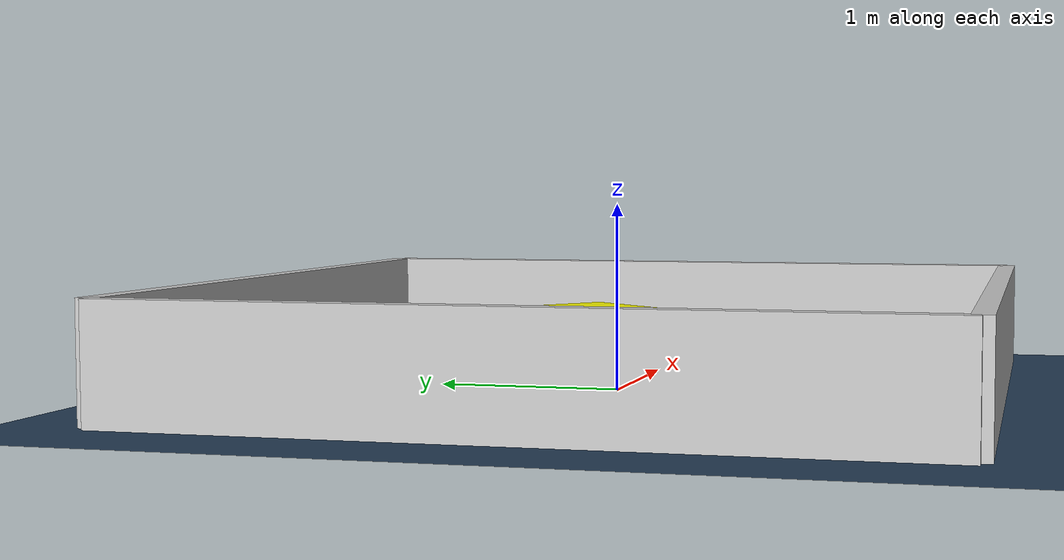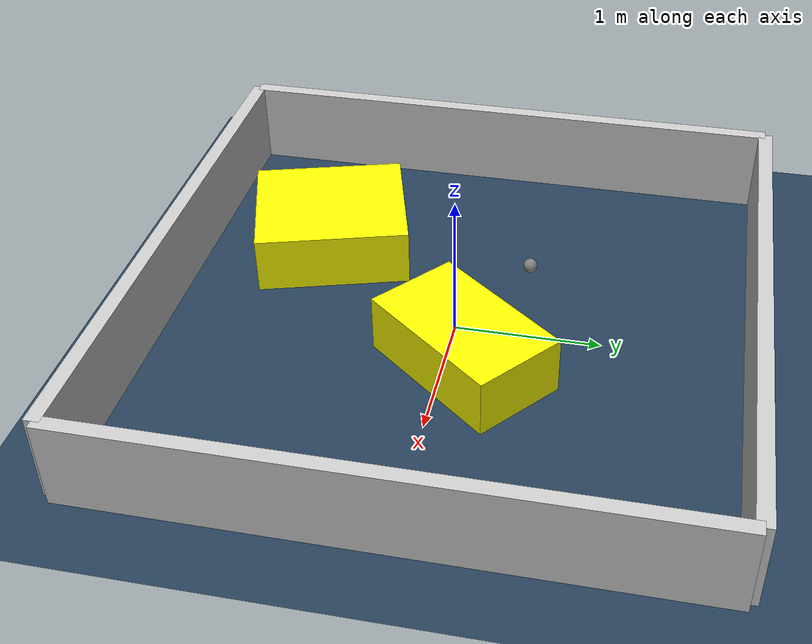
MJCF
<?xml version="1.0" ?>
<mujoco model="generated_environment">
  <option timestep="0.01" integrator="RK4" cone="elliptic"/>
  <default>
    <geom density="1"/>
  </default>
  <asset>
    <texture builtin="gradient" height="3072" rgb1="0.3 0.5 0.7" rgb2="0 0 0" type="skybox" width="512"/>
    <texture builtin="checker" height="300" mark="edge" markrgb="0.8 0.8 0.8" name="groundplane" rgb1="0.2 0.3 0.4" rgb2="0.1 0.2 0.3" type="2d" width="300"/>
    <material name="groundplane" reflectance="0.2" texrepeat="5 5" texture="groundplane" texuniform="true"/>
    <material name="robot" rgba="0.0 1.0 0.0 1"/>
  </asset>
  <worldbody>
    <light dir="0 0 -1" directional="true" pos="0 0 1.5"/>
    <geom condim="4" friction="1.0 0.005 0.001" material="groundplane" name="floor" size="0 0 0.05" type="plane"/>
    <body name="walls">
      <geom name="wall_1" condim="4" pos="-2.0 0.0 0.3" rgba="0.800000011920929 0.800000011920929 0.800000011920929 1.0" size="0.05 2.0 0.3" type="box"/>
      <geom name="wall_2" condim="4" pos="2.0 0.0 0.3" rgba="0.800000011920929 0.800000011920929 0.800000011920929 1.0" size="0.05 2.0 0.3" type="box"/>
      <geom name="wall_3" condim="4" pos="0.0 -2.0 0.3" rgba="0.800000011920929 0.800000011920929 0.800000011920929 1.0" size="2.0 0.05 0.3" type="box"/>
      <geom name="wall_4" condim="4" pos="0.0 2.0 0.3" rgba="0.800000011920929 0.800000011920929 0.800000011920929 1.0" size="2.0 0.05 0.3" type="box"/>
    </body>
    <body name="robot">
      <joint name="joint_x" type="slide" pos="0 0 0" axis="1 0 0"/>
      <joint name="joint_y" type="slide" pos="0 0 0" axis="0 1 0"/>
      <geom name="robot" type="sphere" pos="-0.5419774569276465 0.4364491190024782 0.2" size="0.05" mass="5." friction="1.0 0.005 0.0001" condim="4"/>
      <site name="sensor_ball"/>
    </body>
    <body name="obstacle_1_movable">
      <geom name="obstacle_1_movable" condim="4" pos="-0.766100568423329 -1.0754855418699134 0.2" euler="0 0 106.86969640569487" friction="1.0 0.005 0.001" rgba="1 1 0 1" size="0.5369188323183086 0.4823385159203112 0.2" type="box" mass="0.1"/>
      <joint type="free"/>
    </body>
    <body name="obstacle_2_movable">
      <geom name="obstacle_2_movable" condim="4" pos="0.397833020953527 0.1402219212950695 0.2" euler="0 0 50.84644411742373" friction="1.0 0.005 0.001" rgba="1 1 0 1" size="0.5518495256497976 0.32979915861053893 0.2" type="box" mass="0.1"/>
      <joint type="free"/>
    </body>
  </worldbody>
  <actuator>
    <motor name="actuator_x" joint="joint_x" gear="1" ctrlrange="-1 1"/>
    <motor name="actuator_y" joint="joint_y" gear="1" ctrlrange="-1 1"/>
  </actuator>
</mujoco>
